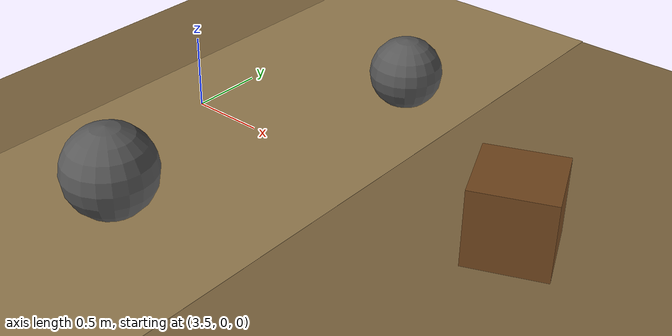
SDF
<?xml version="1.0"?>
<sdf version="1.9">
  <world name="ugv_outdoor">

    <physics name="1ms" type="ode">
      <max_step_size>0.001</max_step_size>
      <real_time_factor>1.0</real_time_factor>
    </physics>

    <plugin filename="gz-sim-physics-system" name="gz::sim::systems::Physics"/>
    <plugin filename="gz-sim-user-commands-system" name="gz::sim::systems::UserCommands"/>
    <plugin filename="gz-sim-scene-broadcaster-system" name="gz::sim::systems::SceneBroadcaster"/>
    <plugin filename="gz-sim-sensors-system" name="gz::sim::systems::Sensors">
      <render_engine>ogre2</render_engine>
    </plugin>

    <light type="directional" name="sun">
      <cast_shadows>true</cast_shadows>
      <pose>0 0 10 0 0 0</pose>
      <diffuse>0.9 0.9 0.85 1</diffuse>
      <specular>0.2 0.2 0.2 1</specular>
      <direction>-0.4 0.2 -0.9</direction>
    </light>

    <model name="ground_plane">
      <static>true</static>
      <link name="link">
        <collision name="collision">
          <geometry>
            <plane>
              <normal>0 0 1</normal>
              <size>60 60</size>
            </plane>
          </geometry>
          <surface>
            <friction>
              <ode>
                <mu>0.8</mu>
                <mu2>0.8</mu2>
              </ode>
            </friction>
          </surface>
        </collision>
        <visual name="visual">
          <geometry>
            <plane>
              <normal>0 0 1</normal>
              <size>60 60</size>
            </plane>
          </geometry>
          <material>
            <ambient>0.45 0.36 0.22 1</ambient>
            <diffuse>0.5 0.4 0.25 1</diffuse>
          </material>
        </visual>
      </link>
    </model>

    <model name="dirt_track_east">
      <static>true</static>
      <pose>4 0 0.001 0 0 0</pose>
      <link name="link">
        <visual name="visual">
          <geometry>
            <plane>
              <normal>0 0 1</normal>
              <size>2.0 10.0</size>
            </plane>
          </geometry>
          <material>
            <ambient>0.55 0.45 0.3 1</ambient>
            <diffuse>0.6 0.5 0.32 1</diffuse>
          </material>
        </visual>
      </link>
    </model>

    <!-- Lethal obstacles: real collision geometry for the geometry-precedence
         DoD check (architecture.md §9 / §13 item 5). -->
    <model name="rock_01">
      <static>true</static>
      <pose>4 -1.2 0.25 0 0 0</pose>
      <link name="link">
        <collision name="collision">
          <geometry><sphere><radius>0.3</radius></sphere></geometry>
        </collision>
        <visual name="visual">
          <geometry><sphere><radius>0.3</radius></sphere></geometry>
          <material><ambient>0.3 0.3 0.3 1</ambient><diffuse>0.35 0.35 0.35 1</diffuse></material>
        </visual>
      </link>
    </model>

    <model name="rock_02">
      <static>true</static>
      <pose>4.5 1.0 0.2 0 0 0</pose>
      <link name="link">
        <collision name="collision">
          <geometry><sphere><radius>0.25</radius></sphere></geometry>
        </collision>
        <visual name="visual">
          <geometry><sphere><radius>0.25</radius></sphere></geometry>
          <material><ambient>0.3 0.3 0.3 1</ambient><diffuse>0.35 0.35 0.35 1</diffuse></material>
        </visual>
      </link>
    </model>

    <model name="crate_obstacle">
      <static>true</static>
      <pose>6 0 0.25 0 0 0.4</pose>
      <link name="link">
        <collision name="collision">
          <geometry><box><size>0.5 0.5 0.5</size></box></geometry>
        </collision>
        <visual name="visual">
          <geometry><box><size>0.5 0.5 0.5</size></box></geometry>
          <material><ambient>0.4 0.25 0.1 1</ambient><diffuse>0.45 0.28 0.12 1</diffuse></material>
        </visual>
      </link>
    </model>

  </world>
</sdf>
